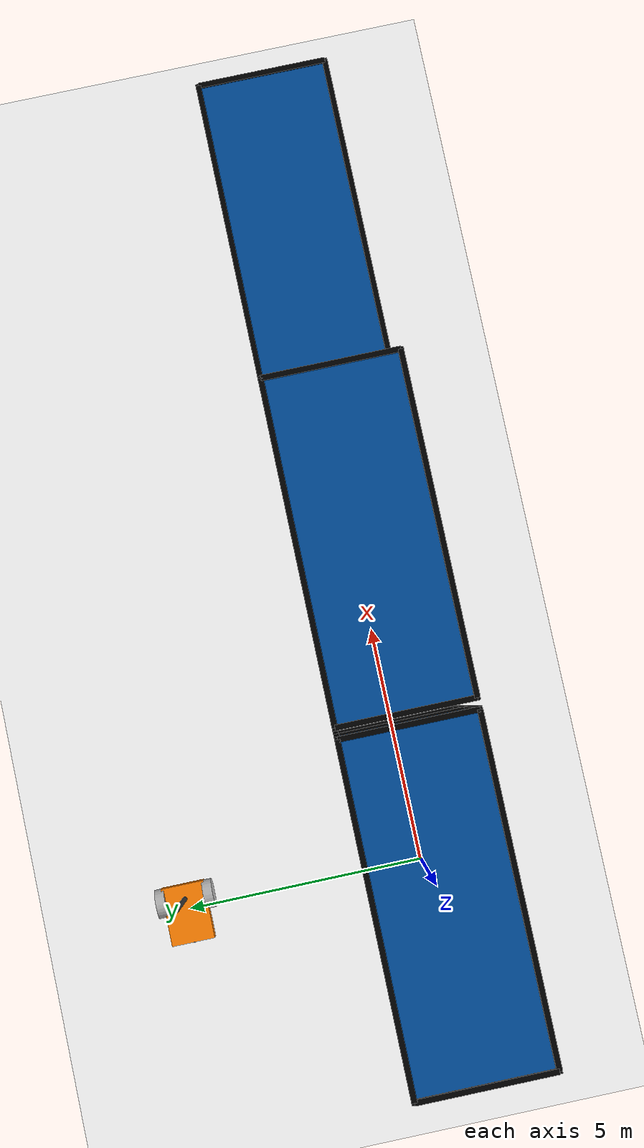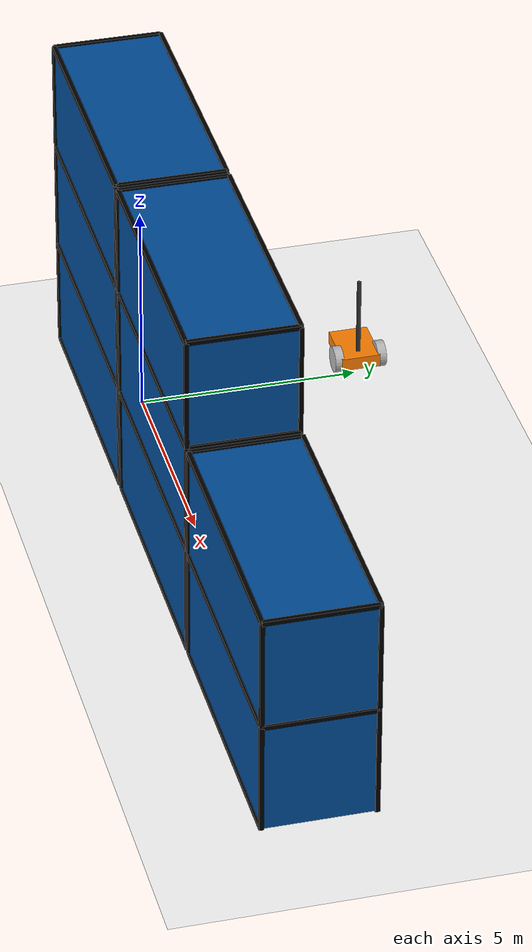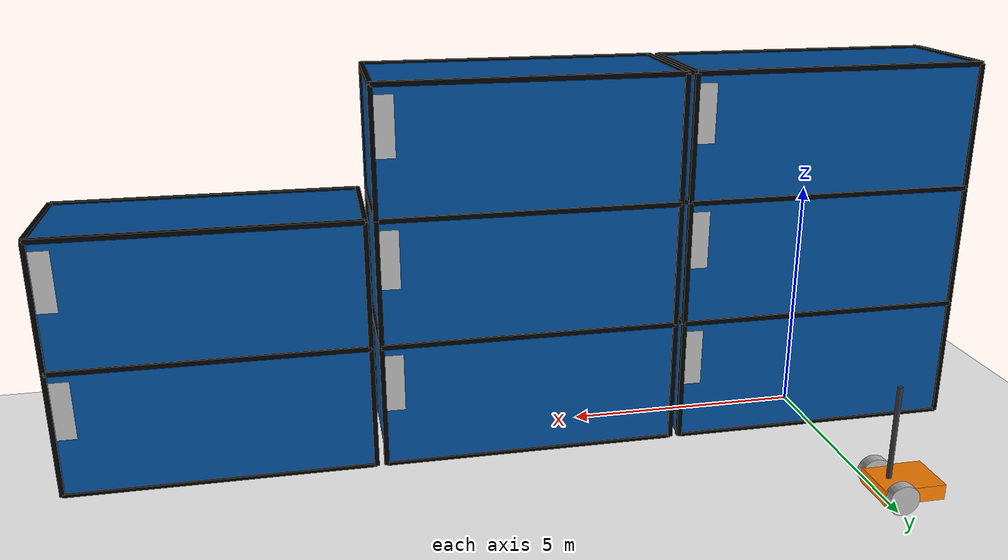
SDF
<sdf version="1.8">
 <world name="concor_shipyard">
  <physics name="1ms" type="ignored">
   <max_step_size>0.001</max_step_size>
   <real_time_factor>1.0</real_time_factor>
  </physics>
  <spherical_coordinates>
   <surface_model>EARTH_WGS84</surface_model>
   <world_frame_orientation>ENU</world_frame_orientation>
   <latitude_deg>37.7749</latitude_deg>
   <longitude_deg>-122.4194</longitude_deg>
   <elevation>0</elevation>
   <heading_deg>0</heading_deg>
  </spherical_coordinates>
  <plugin filename="gz-sim-physics-system" name="gz::sim::systems::Physics"/>
  <plugin filename="gz-sim-user-commands-system" name="gz::sim::systems::UserCommands"/>
  <plugin filename="gz-sim-scene-broadcaster-system" name="gz::sim::systems::SceneBroadcaster"/>
  <plugin filename="gz-sim-sensors-system" name="gz::sim::systems::Sensors">
   <render_engine>ogre2</render_engine>
  </plugin>
  <plugin filename="gz-sim-navsat-system" name="gz::sim::systems::NavSat"/>
  <scene>
   <ambient>0.6 0.6 0.6 1</ambient>
   <background>0.5 0.7 0.9 1</background>
   <shadows>true</shadows>
   <sky><clouds><speed>12</speed></clouds></sky>
  </scene>
  <light type="directional" name="sun">
   <pose>100 100 100 0 0 0</pose>
   <diffuse>1.0 0.9 0.5 1</diffuse>
   <specular>0.5 0.5 0.5 1</specular>
   <direction>-0.5 0.1 -0.9</direction>
  </light>
  <model name="ground_plane">
   <static>true</static>
   <link name="link">
    <collision name="collision">
     <geometry><plane><normal>0 0 1</normal><size>200 200</size></plane></geometry>
    </collision>
    <visual name="visual">
     <geometry><plane><normal>0 0 1</normal><size>200 200</size></plane></geometry>
     <material>
      <ambient>1 1 1 1</ambient>
      <diffuse>1 1 1 1</diffuse>
      <pbr><metal><albedo_map>materials/textures/concrete_diffuse.jpg</albedo_map></metal></pbr>
     </material>
    </visual>
   </link>
  </model>
  <include><name>robot</name><uri>model://shipyard_robot</uri><pose>0 5 0.5 0 0 0</pose></include>
  <include>
   <name>container_R0C0S0</name>
   <uri>model://container_R0C0S0</uri>
   <pose>0.0 0.0 1.295 0 0 0</pose>
  </include>
  <include>
   <name>container_R0C0S1</name>
   <uri>model://container_R0C0S1</uri>
   <pose>0.0 0.0 3.885 0 0 0</pose>
  </include>
  <include>
   <name>container_R0C0S2</name>
   <uri>model://container_R0C0S2</uri>
   <pose>0.0 0.0 6.475 0 0 0</pose>
  </include>
  <include>
   <name>container_R0C1S0</name>
   <uri>model://container_R0C1S0</uri>
   <pose>6.26 0.0 1.295 0 0 0</pose>
  </include>
  <include>
   <name>container_R0C1S1</name>
   <uri>model://container_R0C1S1</uri>
   <pose>6.26 0.0 3.885 0 0 0</pose>
  </include>
  <include>
   <name>container_R0C1S2</name>
   <uri>model://container_R0C1S2</uri>
   <pose>6.26 0.0 6.475 0 0 0</pose>
  </include>
  <include>
   <name>container_R0C2S0</name>
   <uri>model://container_R0C2S0</uri>
   <pose>12.52 0.0 1.295 0 0 0</pose>
  </include>
  <include>
   <name>container_R0C2S1</name>
   <uri>model://container_R0C2S1</uri>
   <pose>12.52 0.0 3.885 0 0 0</pose>
  </include>
 </world>
</sdf>

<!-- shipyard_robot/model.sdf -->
<sdf version="1.8">
    <model name="shipyard_robot">
        <self_collide>false</self_collide>

        <link name="base_link">
            <pose>0 0 0.15 0 0 0</pose>
            <inertial>
                <mass>50.0</mass>
                <pose>-0.3 0 -0.1 0 0 0</pose>
                <inertia>
                    <ixx>2.0</ixx><iyy>2.0</iyy><izz>2.0</izz>
                </inertia>
            </inertial>
            <collision name="collision">
                <geometry><box><size>1.2 0.9 0.3</size></box></geometry>
            </collision>
            <visual name="visual">
                <geometry><box><size>1.2 0.9 0.3</size></box></geometry>
                <material><ambient>1 0.5 0 1</ambient><diffuse>1 0.5 0 1</diffuse></material>
            </visual>

            <visual name="mast">
                <pose>0.3 0 1 0 0 0</pose>
                <geometry><cylinder><radius>0.05</radius><length>2.0</length></cylinder></geometry>
                <material><ambient>0.2 0.2 0.2 1</ambient><diffuse>0.2 0.2 0.2 1</diffuse></material>
            </visual>
        </link>

        <link name="left_wheel">
            <pose>0.3 0.5 0.15 -1.5708 0 0</pose>
            <collision name="collision">
                <geometry><sphere><radius>0.3</radius></sphere></geometry>
                <surface><friction><ode><mu>1.0</mu><mu2>1.0</mu2></ode></friction></surface>
            </collision>
            <visual name="visual">
                <geometry><cylinder><radius>0.3</radius><length>0.2</length></cylinder></geometry>
            </visual>
        </link>

        <link name="right_wheel">
            <pose>0.3 -0.5 0.15 -1.5708 0 0</pose>
            <collision name="collision">
                <geometry><sphere><radius>0.3</radius></sphere></geometry>
                <surface><friction><ode><mu>1.0</mu><mu2>1.0</mu2></ode></friction></surface>
            </collision>
            <visual name="visual">
                <geometry><cylinder><radius>0.3</radius><length>0.2</length></cylinder></geometry>
            </visual>
        </link>

        <link name="caster">
            <pose>-0.5 0 0 0 0 0</pose>
            <collision name="collision">
                <geometry><sphere><radius>0.15</radius></sphere></geometry>
                <surface><friction><ode><mu>0</mu><mu2>0</mu2></ode></friction></surface>
            </collision>
            <visual name="visual">
                <geometry><sphere><radius>0.15</radius></sphere></geometry>
            </visual>
        </link>

        <joint name="left_wheel_joint" type="revolute">
            <parent>base_link</parent><child>left_wheel</child>
            <axis>
                <xyz>0 0 1</xyz>
                <dynamics>
                    <damping>0.1</damping> <friction>0.1</friction>
                </dynamics>
            </axis>
        </joint>
        <joint name="right_wheel_joint" type="revolute">
            <parent>base_link</parent><child>right_wheel</child>
            <axis>
                <xyz>0 0 1</xyz>
                <dynamics>
                    <damping>0.1</damping> <friction>0.1</friction>
                </dynamics>
            </axis>
        </joint>
        <joint name="caster_wheel_joint" type="fixed">
            <parent>base_link</parent><child>caster</child>
        </joint>

        <link name="lidar_link">
            <pose>0.3 0 2.2 0 0 0</pose>
            <sensor name="gpu_lidar" type="gpu_lidar">
                <update_rate>10</update_rate>
                <lidar>
                    <scan>
                        <horizontal><samples>640</samples><resolution>1</resolution><min_angle>-3.14</min_angle><max_angle>3.14</max_angle></horizontal>
                        <vertical><samples>16</samples><resolution>1</resolution><min_angle>-0.261799</min_angle> <max_angle>0.261799</max_angle></vertical>
                    </scan>
                    <range><min>0.1</min><max>30.0</max></range>
                </lidar>
            </sensor>
        </link>

        <joint name="lidar_joint" type="fixed"><parent>base_link</parent><child>lidar_link</child></joint>

        <link name="camera_link">
            <pose>0.3 0 1.8 0 0 0</pose>
            <sensor name="camera_left" type="camera">
                <pose>0 0.1 0 0 0 1.5708</pose>
                <update_rate>30</update_rate>
                <camera><horizontal_fov>1.05</horizontal_fov><image><width>800</width><height>600</height></image></camera>
            </sensor>
            <sensor name="camera_right" type="camera">
                <pose>0 -0.1 0 0 0 -1.5708</pose>
                <update_rate>30</update_rate>
                <camera><horizontal_fov>1.05</horizontal_fov><image><width>800</width><height>600</height></image></camera>
            </sensor>
        </link>

        <joint name="camera_joint" type="fixed"><parent>base_link</parent><child>camera_link</child></joint>

        <link name="gps_link">
            <pose>0 0 0 0 0 0</pose>
            <sensor name="navsat" type="navsat">
                <always_on>1</always_on>
                <update_rate>1</update_rate>
            </sensor>
        </link>

        <joint name="gps_joint" type="fixed">
            <parent>base_link</parent>
            <child>gps_link</child>
        </joint>

        <plugin filename="gz-sim-diff-drive-system" name="gz::sim::systems::DiffDrive">
            <left_joint>left_wheel_joint</left_joint>
            <right_joint>right_wheel_joint</right_joint>
            <wheel_separation>1.1</wheel_separation>
            <wheel_radius>0.3</wheel_radius>

            <odom_topic>/model/robot/odometry</odom_topic>
            <tf_topic>/model/robot/tf</tf_topic> <frame_id>odom</frame_id>
            <child_frame_id>robot/base_link</child_frame_id>
            <publish_odom_tf>true</publish_odom_tf>
        </plugin>
    </model>
</sdf>

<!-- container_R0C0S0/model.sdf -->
<sdf version="1.8">
  <model name="container_R0C0S0">
    <static>true</static>
    <link name="link">
      <visual name="body"><geometry><box><size>6.06 2.44 2.59</size></box></geometry>
        <material><ambient>0 0.3 0.6 1</ambient><diffuse>0 0.3 0.6 1</diffuse></material>
      </visual>

                 <visual name="vertical_edge_1">
                <pose>3.03 1.22 0 0 0 0</pose>
                <geometry><box><size>0.1 0.1 2.59</size></box></geometry>
                <material><ambient>0 0 0 1</ambient><diffuse>0 0 0 1</diffuse></material>
            </visual>
            <visual name="vertical_edge_2">
                <pose>3.03 -1.22 0 0 0 0</pose>
                <geometry><box><size>0.1 0.1 2.59</size></box></geometry>
                <material><ambient>0 0 0 1</ambient><diffuse>0 0 0 1</diffuse></material>
            </visual>
            <visual name="vertical_edge_3">
                <pose>-3.03 1.22 0 0 0 0</pose>
                <geometry><box><size>0.1 0.1 2.59</size></box></geometry>
                <material><ambient>0 0 0 1</ambient><diffuse>0 0 0 1</diffuse></material>
            </visual>
            <visual name="vertical_edge_4">
                <pose>-3.03 -1.22 0 0 0 0</pose>
                <geometry><box><size>0.1 0.1 2.59</size></box></geometry>
                <material><ambient>0 0 0 1</ambient><diffuse>0 0 0 1</diffuse></material>
            </visual>
            <visual name="edge_long_top_left">
                <pose>0 1.22 1.295 0 0 0</pose>
                <geometry><box><size>6.06 0.1 0.1</size></box></geometry>
                <material><ambient>0 0 0 1</ambient><diffuse>0 0 0 1</diffuse></material>
            </visual>
            <visual name="edge_long_top_right">
                <pose>0 -1.22 1.295 0 0 0</pose>
                <geometry><box><size>6.06 0.1 0.1</size></box></geometry>
                <material><ambient>0 0 0 1</ambient><diffuse>0 0 0 1</diffuse></material>
            </visual>
            <visual name="edge_long_bottom_left">
                <pose>0 1.22 -1.295 0 0 0</pose>
                <geometry><box><size>6.06 0.1 0.1</size></box></geometry>
                <material><ambient>0 0 0 1</ambient><diffuse>0 0 0 1</diffuse></material>
            </visual>
            <visual name="edge_long_bottom_right">
                <pose>0 -1.22 -1.295 0 0 0</pose>
                <geometry><box><size>6.06 0.1 0.1</size></box></geometry>
                <material><ambient>0 0 0 1</ambient><diffuse>0 0 0 1</diffuse></material>
            </visual>

            <visual name="edge_width_top_front">
                <pose>3.03 0 1.295 0 0 0</pose>
                <geometry><box><size>0.1 2.44 0.1</size></box></geometry>
                <material><ambient>0 0 0 1</ambient><diffuse>0 0 0 1</diffuse></material>
            </visual>
            <visual name="edge_width_top_back">
                <pose>-3.03 0 1.295 0 0 0</pose>
                <geometry><box><size>0.1 2.44 0.1</size></box></geometry>
                <material><ambient>0 0 0 1</ambient><diffuse>0 0 0 1</diffuse></material>
            </visual>

      <visual name="id_plate">
        <pose>2.8 1.226 0.5 0 1.5708 1.5708</pose>
        <geometry><plane><normal>0 0 1</normal><size>1.2 0.4</size></plane></geometry>
        <material><pbr><metal><albedo_map>model://container_R0C0S0/materials/textures/label_R0C0S0.png</albedo_map>
        <emissive_map>model://container_R0C0S0/materials/textures/label_R0C0S0.png</emissive_map></metal></pbr></material>
      </visual>
      </link>
  </model>
</sdf>

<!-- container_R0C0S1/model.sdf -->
<sdf version="1.8">
  <model name="container_R0C0S1">
    <static>true</static>
    <link name="link">
      <visual name="body"><geometry><box><size>6.06 2.44 2.59</size></box></geometry>
        <material><ambient>0 0.3 0.6 1</ambient><diffuse>0 0.3 0.6 1</diffuse></material>
      </visual>

                 <visual name="vertical_edge_1">
                <pose>3.03 1.22 0 0 0 0</pose>
                <geometry><box><size>0.1 0.1 2.59</size></box></geometry>
                <material><ambient>0 0 0 1</ambient><diffuse>0 0 0 1</diffuse></material>
            </visual>
            <visual name="vertical_edge_2">
                <pose>3.03 -1.22 0 0 0 0</pose>
                <geometry><box><size>0.1 0.1 2.59</size></box></geometry>
                <material><ambient>0 0 0 1</ambient><diffuse>0 0 0 1</diffuse></material>
            </visual>
            <visual name="vertical_edge_3">
                <pose>-3.03 1.22 0 0 0 0</pose>
                <geometry><box><size>0.1 0.1 2.59</size></box></geometry>
                <material><ambient>0 0 0 1</ambient><diffuse>0 0 0 1</diffuse></material>
            </visual>
            <visual name="vertical_edge_4">
                <pose>-3.03 -1.22 0 0 0 0</pose>
                <geometry><box><size>0.1 0.1 2.59</size></box></geometry>
                <material><ambient>0 0 0 1</ambient><diffuse>0 0 0 1</diffuse></material>
            </visual>
            <visual name="edge_long_top_left">
                <pose>0 1.22 1.295 0 0 0</pose>
                <geometry><box><size>6.06 0.1 0.1</size></box></geometry>
                <material><ambient>0 0 0 1</ambient><diffuse>0 0 0 1</diffuse></material>
            </visual>
            <visual name="edge_long_top_right">
                <pose>0 -1.22 1.295 0 0 0</pose>
                <geometry><box><size>6.06 0.1 0.1</size></box></geometry>
                <material><ambient>0 0 0 1</ambient><diffuse>0 0 0 1</diffuse></material>
            </visual>
            <visual name="edge_long_bottom_left">
                <pose>0 1.22 -1.295 0 0 0</pose>
                <geometry><box><size>6.06 0.1 0.1</size></box></geometry>
                <material><ambient>0 0 0 1</ambient><diffuse>0 0 0 1</diffuse></material>
            </visual>
            <visual name="edge_long_bottom_right">
                <pose>0 -1.22 -1.295 0 0 0</pose>
                <geometry><box><size>6.06 0.1 0.1</size></box></geometry>
                <material><ambient>0 0 0 1</ambient><diffuse>0 0 0 1</diffuse></material>
            </visual>

            <visual name="edge_width_top_front">
                <pose>3.03 0 1.295 0 0 0</pose>
                <geometry><box><size>0.1 2.44 0.1</size></box></geometry>
                <material><ambient>0 0 0 1</ambient><diffuse>0 0 0 1</diffuse></material>
            </visual>
            <visual name="edge_width_top_back">
                <pose>-3.03 0 1.295 0 0 0</pose>
                <geometry><box><size>0.1 2.44 0.1</size></box></geometry>
                <material><ambient>0 0 0 1</ambient><diffuse>0 0 0 1</diffuse></material>
            </visual>

      <visual name="id_plate">
        <pose>2.8 1.226 0.5 0 1.5708 1.5708</pose>
        <geometry><plane><normal>0 0 1</normal><size>1.2 0.4</size></plane></geometry>
        <material><pbr><metal><albedo_map>model://container_R0C0S1/materials/textures/label_R0C0S1.png</albedo_map>
        <emissive_map>model://container_R0C0S1/materials/textures/label_R0C0S1.png</emissive_map></metal></pbr></material>
      </visual>
      </link>
  </model>
</sdf>

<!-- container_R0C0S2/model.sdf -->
<sdf version="1.8">
  <model name="container_R0C0S2">
    <static>true</static>
    <link name="link">
      <visual name="body"><geometry><box><size>6.06 2.44 2.59</size></box></geometry>
        <material><ambient>0 0.3 0.6 1</ambient><diffuse>0 0.3 0.6 1</diffuse></material>
      </visual>

                 <visual name="vertical_edge_1">
                <pose>3.03 1.22 0 0 0 0</pose>
                <geometry><box><size>0.1 0.1 2.59</size></box></geometry>
                <material><ambient>0 0 0 1</ambient><diffuse>0 0 0 1</diffuse></material>
            </visual>
            <visual name="vertical_edge_2">
                <pose>3.03 -1.22 0 0 0 0</pose>
                <geometry><box><size>0.1 0.1 2.59</size></box></geometry>
                <material><ambient>0 0 0 1</ambient><diffuse>0 0 0 1</diffuse></material>
            </visual>
            <visual name="vertical_edge_3">
                <pose>-3.03 1.22 0 0 0 0</pose>
                <geometry><box><size>0.1 0.1 2.59</size></box></geometry>
                <material><ambient>0 0 0 1</ambient><diffuse>0 0 0 1</diffuse></material>
            </visual>
            <visual name="vertical_edge_4">
                <pose>-3.03 -1.22 0 0 0 0</pose>
                <geometry><box><size>0.1 0.1 2.59</size></box></geometry>
                <material><ambient>0 0 0 1</ambient><diffuse>0 0 0 1</diffuse></material>
            </visual>
            <visual name="edge_long_top_left">
                <pose>0 1.22 1.295 0 0 0</pose>
                <geometry><box><size>6.06 0.1 0.1</size></box></geometry>
                <material><ambient>0 0 0 1</ambient><diffuse>0 0 0 1</diffuse></material>
            </visual>
            <visual name="edge_long_top_right">
                <pose>0 -1.22 1.295 0 0 0</pose>
                <geometry><box><size>6.06 0.1 0.1</size></box></geometry>
                <material><ambient>0 0 0 1</ambient><diffuse>0 0 0 1</diffuse></material>
            </visual>
            <visual name="edge_long_bottom_left">
                <pose>0 1.22 -1.295 0 0 0</pose>
                <geometry><box><size>6.06 0.1 0.1</size></box></geometry>
                <material><ambient>0 0 0 1</ambient><diffuse>0 0 0 1</diffuse></material>
            </visual>
            <visual name="edge_long_bottom_right">
                <pose>0 -1.22 -1.295 0 0 0</pose>
                <geometry><box><size>6.06 0.1 0.1</size></box></geometry>
                <material><ambient>0 0 0 1</ambient><diffuse>0 0 0 1</diffuse></material>
            </visual>

            <visual name="edge_width_top_front">
                <pose>3.03 0 1.295 0 0 0</pose>
                <geometry><box><size>0.1 2.44 0.1</size></box></geometry>
                <material><ambient>0 0 0 1</ambient><diffuse>0 0 0 1</diffuse></material>
            </visual>
            <visual name="edge_width_top_back">
                <pose>-3.03 0 1.295 0 0 0</pose>
                <geometry><box><size>0.1 2.44 0.1</size></box></geometry>
                <material><ambient>0 0 0 1</ambient><diffuse>0 0 0 1</diffuse></material>
            </visual>

      <visual name="id_plate">
        <pose>2.8 1.226 0.5 0 1.5708 1.5708</pose>
        <geometry><plane><normal>0 0 1</normal><size>1.2 0.4</size></plane></geometry>
        <material><pbr><metal><albedo_map>model://container_R0C0S2/materials/textures/label_R0C0S2.png</albedo_map>
        <emissive_map>model://container_R0C0S2/materials/textures/label_R0C0S2.png</emissive_map></metal></pbr></material>
      </visual>
      </link>
  </model>
</sdf>

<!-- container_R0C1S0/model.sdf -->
<sdf version="1.8">
  <model name="container_R0C1S0">
    <static>true</static>
    <link name="link">
      <visual name="body"><geometry><box><size>6.06 2.44 2.59</size></box></geometry>
        <material><ambient>0 0.3 0.6 1</ambient><diffuse>0 0.3 0.6 1</diffuse></material>
      </visual>

                 <visual name="vertical_edge_1">
                <pose>3.03 1.22 0 0 0 0</pose>
                <geometry><box><size>0.1 0.1 2.59</size></box></geometry>
                <material><ambient>0 0 0 1</ambient><diffuse>0 0 0 1</diffuse></material>
            </visual>
            <visual name="vertical_edge_2">
                <pose>3.03 -1.22 0 0 0 0</pose>
                <geometry><box><size>0.1 0.1 2.59</size></box></geometry>
                <material><ambient>0 0 0 1</ambient><diffuse>0 0 0 1</diffuse></material>
            </visual>
            <visual name="vertical_edge_3">
                <pose>-3.03 1.22 0 0 0 0</pose>
                <geometry><box><size>0.1 0.1 2.59</size></box></geometry>
                <material><ambient>0 0 0 1</ambient><diffuse>0 0 0 1</diffuse></material>
            </visual>
            <visual name="vertical_edge_4">
                <pose>-3.03 -1.22 0 0 0 0</pose>
                <geometry><box><size>0.1 0.1 2.59</size></box></geometry>
                <material><ambient>0 0 0 1</ambient><diffuse>0 0 0 1</diffuse></material>
            </visual>
            <visual name="edge_long_top_left">
                <pose>0 1.22 1.295 0 0 0</pose>
                <geometry><box><size>6.06 0.1 0.1</size></box></geometry>
                <material><ambient>0 0 0 1</ambient><diffuse>0 0 0 1</diffuse></material>
            </visual>
            <visual name="edge_long_top_right">
                <pose>0 -1.22 1.295 0 0 0</pose>
                <geometry><box><size>6.06 0.1 0.1</size></box></geometry>
                <material><ambient>0 0 0 1</ambient><diffuse>0 0 0 1</diffuse></material>
            </visual>
            <visual name="edge_long_bottom_left">
                <pose>0 1.22 -1.295 0 0 0</pose>
                <geometry><box><size>6.06 0.1 0.1</size></box></geometry>
                <material><ambient>0 0 0 1</ambient><diffuse>0 0 0 1</diffuse></material>
            </visual>
            <visual name="edge_long_bottom_right">
                <pose>0 -1.22 -1.295 0 0 0</pose>
                <geometry><box><size>6.06 0.1 0.1</size></box></geometry>
                <material><ambient>0 0 0 1</ambient><diffuse>0 0 0 1</diffuse></material>
            </visual>

            <visual name="edge_width_top_front">
                <pose>3.03 0 1.295 0 0 0</pose>
                <geometry><box><size>0.1 2.44 0.1</size></box></geometry>
                <material><ambient>0 0 0 1</ambient><diffuse>0 0 0 1</diffuse></material>
            </visual>
            <visual name="edge_width_top_back">
                <pose>-3.03 0 1.295 0 0 0</pose>
                <geometry><box><size>0.1 2.44 0.1</size></box></geometry>
                <material><ambient>0 0 0 1</ambient><diffuse>0 0 0 1</diffuse></material>
            </visual>

      <visual name="id_plate">
        <pose>2.8 1.226 0.5 0 1.5708 1.5708</pose>
        <geometry><plane><normal>0 0 1</normal><size>1.2 0.4</size></plane></geometry>
        <material><pbr><metal><albedo_map>model://container_R0C1S0/materials/textures/label_R0C1S0.png</albedo_map>
        <emissive_map>model://container_R0C1S0/materials/textures/label_R0C1S0.png</emissive_map></metal></pbr></material>
      </visual>
      </link>
  </model>
</sdf>

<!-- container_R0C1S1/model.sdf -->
<sdf version="1.8">
  <model name="container_R0C1S1">
    <static>true</static>
    <link name="link">
      <visual name="body"><geometry><box><size>6.06 2.44 2.59</size></box></geometry>
        <material><ambient>0 0.3 0.6 1</ambient><diffuse>0 0.3 0.6 1</diffuse></material>
      </visual>

                 <visual name="vertical_edge_1">
                <pose>3.03 1.22 0 0 0 0</pose>
                <geometry><box><size>0.1 0.1 2.59</size></box></geometry>
                <material><ambient>0 0 0 1</ambient><diffuse>0 0 0 1</diffuse></material>
            </visual>
            <visual name="vertical_edge_2">
                <pose>3.03 -1.22 0 0 0 0</pose>
                <geometry><box><size>0.1 0.1 2.59</size></box></geometry>
                <material><ambient>0 0 0 1</ambient><diffuse>0 0 0 1</diffuse></material>
            </visual>
            <visual name="vertical_edge_3">
                <pose>-3.03 1.22 0 0 0 0</pose>
                <geometry><box><size>0.1 0.1 2.59</size></box></geometry>
                <material><ambient>0 0 0 1</ambient><diffuse>0 0 0 1</diffuse></material>
            </visual>
            <visual name="vertical_edge_4">
                <pose>-3.03 -1.22 0 0 0 0</pose>
                <geometry><box><size>0.1 0.1 2.59</size></box></geometry>
                <material><ambient>0 0 0 1</ambient><diffuse>0 0 0 1</diffuse></material>
            </visual>
            <visual name="edge_long_top_left">
                <pose>0 1.22 1.295 0 0 0</pose>
                <geometry><box><size>6.06 0.1 0.1</size></box></geometry>
                <material><ambient>0 0 0 1</ambient><diffuse>0 0 0 1</diffuse></material>
            </visual>
            <visual name="edge_long_top_right">
                <pose>0 -1.22 1.295 0 0 0</pose>
                <geometry><box><size>6.06 0.1 0.1</size></box></geometry>
                <material><ambient>0 0 0 1</ambient><diffuse>0 0 0 1</diffuse></material>
            </visual>
            <visual name="edge_long_bottom_left">
                <pose>0 1.22 -1.295 0 0 0</pose>
                <geometry><box><size>6.06 0.1 0.1</size></box></geometry>
                <material><ambient>0 0 0 1</ambient><diffuse>0 0 0 1</diffuse></material>
            </visual>
            <visual name="edge_long_bottom_right">
                <pose>0 -1.22 -1.295 0 0 0</pose>
                <geometry><box><size>6.06 0.1 0.1</size></box></geometry>
                <material><ambient>0 0 0 1</ambient><diffuse>0 0 0 1</diffuse></material>
            </visual>

            <visual name="edge_width_top_front">
                <pose>3.03 0 1.295 0 0 0</pose>
                <geometry><box><size>0.1 2.44 0.1</size></box></geometry>
                <material><ambient>0 0 0 1</ambient><diffuse>0 0 0 1</diffuse></material>
            </visual>
            <visual name="edge_width_top_back">
                <pose>-3.03 0 1.295 0 0 0</pose>
                <geometry><box><size>0.1 2.44 0.1</size></box></geometry>
                <material><ambient>0 0 0 1</ambient><diffuse>0 0 0 1</diffuse></material>
            </visual>

      <visual name="id_plate">
        <pose>2.8 1.226 0.5 0 1.5708 1.5708</pose>
        <geometry><plane><normal>0 0 1</normal><size>1.2 0.4</size></plane></geometry>
        <material><pbr><metal><albedo_map>model://container_R0C1S1/materials/textures/label_R0C1S1.png</albedo_map>
        <emissive_map>model://container_R0C1S1/materials/textures/label_R0C1S1.png</emissive_map></metal></pbr></material>
      </visual>
      </link>
  </model>
</sdf>

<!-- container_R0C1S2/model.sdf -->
<sdf version="1.8">
  <model name="container_R0C1S2">
    <static>true</static>
    <link name="link">
      <visual name="body"><geometry><box><size>6.06 2.44 2.59</size></box></geometry>
        <material><ambient>0 0.3 0.6 1</ambient><diffuse>0 0.3 0.6 1</diffuse></material>
      </visual>

                 <visual name="vertical_edge_1">
                <pose>3.03 1.22 0 0 0 0</pose>
                <geometry><box><size>0.1 0.1 2.59</size></box></geometry>
                <material><ambient>0 0 0 1</ambient><diffuse>0 0 0 1</diffuse></material>
            </visual>
            <visual name="vertical_edge_2">
                <pose>3.03 -1.22 0 0 0 0</pose>
                <geometry><box><size>0.1 0.1 2.59</size></box></geometry>
                <material><ambient>0 0 0 1</ambient><diffuse>0 0 0 1</diffuse></material>
            </visual>
            <visual name="vertical_edge_3">
                <pose>-3.03 1.22 0 0 0 0</pose>
                <geometry><box><size>0.1 0.1 2.59</size></box></geometry>
                <material><ambient>0 0 0 1</ambient><diffuse>0 0 0 1</diffuse></material>
            </visual>
            <visual name="vertical_edge_4">
                <pose>-3.03 -1.22 0 0 0 0</pose>
                <geometry><box><size>0.1 0.1 2.59</size></box></geometry>
                <material><ambient>0 0 0 1</ambient><diffuse>0 0 0 1</diffuse></material>
            </visual>
            <visual name="edge_long_top_left">
                <pose>0 1.22 1.295 0 0 0</pose>
                <geometry><box><size>6.06 0.1 0.1</size></box></geometry>
                <material><ambient>0 0 0 1</ambient><diffuse>0 0 0 1</diffuse></material>
            </visual>
            <visual name="edge_long_top_right">
                <pose>0 -1.22 1.295 0 0 0</pose>
                <geometry><box><size>6.06 0.1 0.1</size></box></geometry>
                <material><ambient>0 0 0 1</ambient><diffuse>0 0 0 1</diffuse></material>
            </visual>
            <visual name="edge_long_bottom_left">
                <pose>0 1.22 -1.295 0 0 0</pose>
                <geometry><box><size>6.06 0.1 0.1</size></box></geometry>
                <material><ambient>0 0 0 1</ambient><diffuse>0 0 0 1</diffuse></material>
            </visual>
            <visual name="edge_long_bottom_right">
                <pose>0 -1.22 -1.295 0 0 0</pose>
                <geometry><box><size>6.06 0.1 0.1</size></box></geometry>
                <material><ambient>0 0 0 1</ambient><diffuse>0 0 0 1</diffuse></material>
            </visual>

            <visual name="edge_width_top_front">
                <pose>3.03 0 1.295 0 0 0</pose>
                <geometry><box><size>0.1 2.44 0.1</size></box></geometry>
                <material><ambient>0 0 0 1</ambient><diffuse>0 0 0 1</diffuse></material>
            </visual>
            <visual name="edge_width_top_back">
                <pose>-3.03 0 1.295 0 0 0</pose>
                <geometry><box><size>0.1 2.44 0.1</size></box></geometry>
                <material><ambient>0 0 0 1</ambient><diffuse>0 0 0 1</diffuse></material>
            </visual>

      <visual name="id_plate">
        <pose>2.8 1.226 0.5 0 1.5708 1.5708</pose>
        <geometry><plane><normal>0 0 1</normal><size>1.2 0.4</size></plane></geometry>
        <material><pbr><metal><albedo_map>model://container_R0C1S2/materials/textures/label_R0C1S2.png</albedo_map>
        <emissive_map>model://container_R0C1S2/materials/textures/label_R0C1S2.png</emissive_map></metal></pbr></material>
      </visual>
      </link>
  </model>
</sdf>

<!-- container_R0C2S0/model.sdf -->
<sdf version="1.8">
  <model name="container_R0C2S0">
    <static>true</static>
    <link name="link">
      <visual name="body"><geometry><box><size>6.06 2.44 2.59</size></box></geometry>
        <material><ambient>0 0.3 0.6 1</ambient><diffuse>0 0.3 0.6 1</diffuse></material>
      </visual>

                 <visual name="vertical_edge_1">
                <pose>3.03 1.22 0 0 0 0</pose>
                <geometry><box><size>0.1 0.1 2.59</size></box></geometry>
                <material><ambient>0 0 0 1</ambient><diffuse>0 0 0 1</diffuse></material>
            </visual>
            <visual name="vertical_edge_2">
                <pose>3.03 -1.22 0 0 0 0</pose>
                <geometry><box><size>0.1 0.1 2.59</size></box></geometry>
                <material><ambient>0 0 0 1</ambient><diffuse>0 0 0 1</diffuse></material>
            </visual>
            <visual name="vertical_edge_3">
                <pose>-3.03 1.22 0 0 0 0</pose>
                <geometry><box><size>0.1 0.1 2.59</size></box></geometry>
                <material><ambient>0 0 0 1</ambient><diffuse>0 0 0 1</diffuse></material>
            </visual>
            <visual name="vertical_edge_4">
                <pose>-3.03 -1.22 0 0 0 0</pose>
                <geometry><box><size>0.1 0.1 2.59</size></box></geometry>
                <material><ambient>0 0 0 1</ambient><diffuse>0 0 0 1</diffuse></material>
            </visual>
            <visual name="edge_long_top_left">
                <pose>0 1.22 1.295 0 0 0</pose>
                <geometry><box><size>6.06 0.1 0.1</size></box></geometry>
                <material><ambient>0 0 0 1</ambient><diffuse>0 0 0 1</diffuse></material>
            </visual>
            <visual name="edge_long_top_right">
                <pose>0 -1.22 1.295 0 0 0</pose>
                <geometry><box><size>6.06 0.1 0.1</size></box></geometry>
                <material><ambient>0 0 0 1</ambient><diffuse>0 0 0 1</diffuse></material>
            </visual>
            <visual name="edge_long_bottom_left">
                <pose>0 1.22 -1.295 0 0 0</pose>
                <geometry><box><size>6.06 0.1 0.1</size></box></geometry>
                <material><ambient>0 0 0 1</ambient><diffuse>0 0 0 1</diffuse></material>
            </visual>
            <visual name="edge_long_bottom_right">
                <pose>0 -1.22 -1.295 0 0 0</pose>
                <geometry><box><size>6.06 0.1 0.1</size></box></geometry>
                <material><ambient>0 0 0 1</ambient><diffuse>0 0 0 1</diffuse></material>
            </visual>

            <visual name="edge_width_top_front">
                <pose>3.03 0 1.295 0 0 0</pose>
                <geometry><box><size>0.1 2.44 0.1</size></box></geometry>
                <material><ambient>0 0 0 1</ambient><diffuse>0 0 0 1</diffuse></material>
            </visual>
            <visual name="edge_width_top_back">
                <pose>-3.03 0 1.295 0 0 0</pose>
                <geometry><box><size>0.1 2.44 0.1</size></box></geometry>
                <material><ambient>0 0 0 1</ambient><diffuse>0 0 0 1</diffuse></material>
            </visual>

      <visual name="id_plate">
        <pose>2.8 1.226 0.5 0 1.5708 1.5708</pose>
        <geometry><plane><normal>0 0 1</normal><size>1.2 0.4</size></plane></geometry>
        <material><pbr><metal><albedo_map>model://container_R0C2S0/materials/textures/label_R0C2S0.png</albedo_map>
        <emissive_map>model://container_R0C2S0/materials/textures/label_R0C2S0.png</emissive_map></metal></pbr></material>
      </visual>
      </link>
  </model>
</sdf>

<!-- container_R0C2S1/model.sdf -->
<sdf version="1.8">
  <model name="container_R0C2S1">
    <static>true</static>
    <link name="link">
      <visual name="body"><geometry><box><size>6.06 2.44 2.59</size></box></geometry>
        <material><ambient>0 0.3 0.6 1</ambient><diffuse>0 0.3 0.6 1</diffuse></material>
      </visual>

                 <visual name="vertical_edge_1">
                <pose>3.03 1.22 0 0 0 0</pose>
                <geometry><box><size>0.1 0.1 2.59</size></box></geometry>
                <material><ambient>0 0 0 1</ambient><diffuse>0 0 0 1</diffuse></material>
            </visual>
            <visual name="vertical_edge_2">
                <pose>3.03 -1.22 0 0 0 0</pose>
                <geometry><box><size>0.1 0.1 2.59</size></box></geometry>
                <material><ambient>0 0 0 1</ambient><diffuse>0 0 0 1</diffuse></material>
            </visual>
            <visual name="vertical_edge_3">
                <pose>-3.03 1.22 0 0 0 0</pose>
                <geometry><box><size>0.1 0.1 2.59</size></box></geometry>
                <material><ambient>0 0 0 1</ambient><diffuse>0 0 0 1</diffuse></material>
            </visual>
            <visual name="vertical_edge_4">
                <pose>-3.03 -1.22 0 0 0 0</pose>
                <geometry><box><size>0.1 0.1 2.59</size></box></geometry>
                <material><ambient>0 0 0 1</ambient><diffuse>0 0 0 1</diffuse></material>
            </visual>
            <visual name="edge_long_top_left">
                <pose>0 1.22 1.295 0 0 0</pose>
                <geometry><box><size>6.06 0.1 0.1</size></box></geometry>
                <material><ambient>0 0 0 1</ambient><diffuse>0 0 0 1</diffuse></material>
            </visual>
            <visual name="edge_long_top_right">
                <pose>0 -1.22 1.295 0 0 0</pose>
                <geometry><box><size>6.06 0.1 0.1</size></box></geometry>
                <material><ambient>0 0 0 1</ambient><diffuse>0 0 0 1</diffuse></material>
            </visual>
            <visual name="edge_long_bottom_left">
                <pose>0 1.22 -1.295 0 0 0</pose>
                <geometry><box><size>6.06 0.1 0.1</size></box></geometry>
                <material><ambient>0 0 0 1</ambient><diffuse>0 0 0 1</diffuse></material>
            </visual>
            <visual name="edge_long_bottom_right">
                <pose>0 -1.22 -1.295 0 0 0</pose>
                <geometry><box><size>6.06 0.1 0.1</size></box></geometry>
                <material><ambient>0 0 0 1</ambient><diffuse>0 0 0 1</diffuse></material>
            </visual>

            <visual name="edge_width_top_front">
                <pose>3.03 0 1.295 0 0 0</pose>
                <geometry><box><size>0.1 2.44 0.1</size></box></geometry>
                <material><ambient>0 0 0 1</ambient><diffuse>0 0 0 1</diffuse></material>
            </visual>
            <visual name="edge_width_top_back">
                <pose>-3.03 0 1.295 0 0 0</pose>
                <geometry><box><size>0.1 2.44 0.1</size></box></geometry>
                <material><ambient>0 0 0 1</ambient><diffuse>0 0 0 1</diffuse></material>
            </visual>

      <visual name="id_plate">
        <pose>2.8 1.226 0.5 0 1.5708 1.5708</pose>
        <geometry><plane><normal>0 0 1</normal><size>1.2 0.4</size></plane></geometry>
        <material><pbr><metal><albedo_map>model://container_R0C2S1/materials/textures/label_R0C2S1.png</albedo_map>
        <emissive_map>model://container_R0C2S1/materials/textures/label_R0C2S1.png</emissive_map></metal></pbr></material>
      </visual>
      </link>
  </model>
</sdf>
